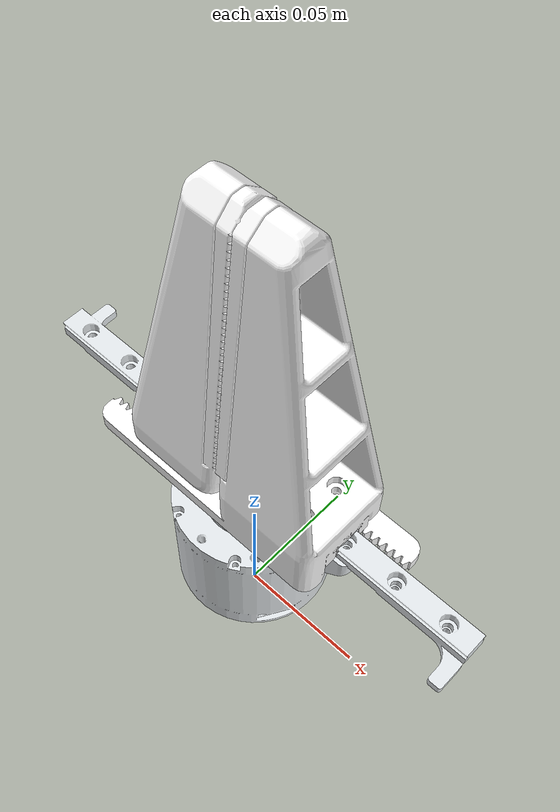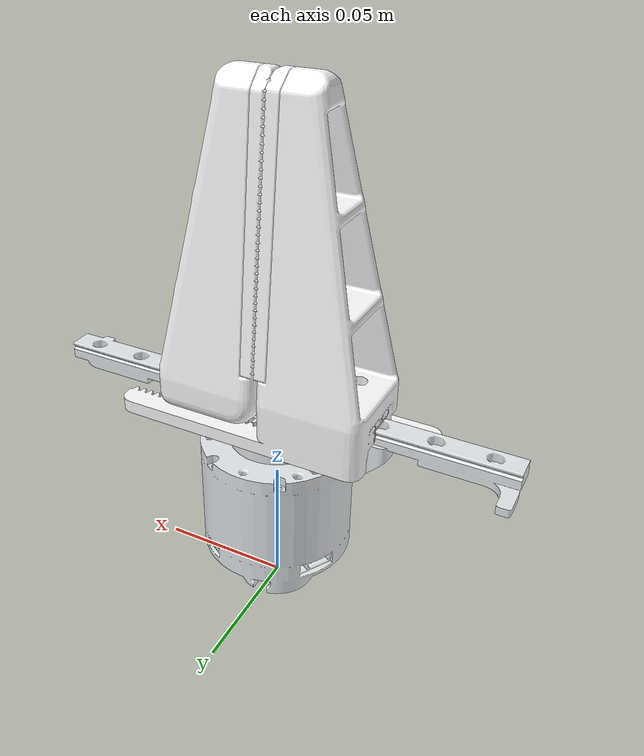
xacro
<?xml version="1.0"?>
<robot name="gripper" xmlns:xacro="http://www.ros.org/wiki/xacro">

    <!-- Arguments -->
    <xacro:arg name="prefix" default="" />
    <xacro:arg name="left" default="False" />

    <xacro:include filename="$(find libertech_ranger_arm_description)/urdf/common/gripper_macro.xacro" />
    <xacro:property name="mesh_visual_path" value="file://$(find libertech_ranger_arm_description)/meshes"/>

    <link name="world"/>

    <xacro:load_gripper prefix="$(arg prefix)" connected_to="world" left="$(arg left)">
        <origin rpy="0.0 0.0 0.0" xyz="0.0 0.0 0.0"/>
    </xacro:load_gripper>

</robot>

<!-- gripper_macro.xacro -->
<robot xmlns:xacro="http://www.ros.org/wiki/xacro">

  <xacro:macro name="load_gripper" params=" prefix:='' connected_to:='' left:=False *origin">
    <xacro:if value="${(left == False)}">
      <xacro:property name="gripper" value="gripper_right"/>
    </xacro:if>
    <xacro:if value="${(left == True)}">
      <xacro:property name="gripper" value="gripper_left"/>
    </xacro:if>
    <xacro:unless value="${not connected_to}">
      <joint name="${prefix}${connected_to}_to_${gripper}_fixed" type="fixed">
        <xacro:insert_block name="origin"/>
        <parent link="${prefix}${connected_to}" />
        <child link="${prefix}${gripper}_base" />
      </joint>
    </xacro:unless>

    <link name="${prefix}${gripper}_base">
      <inertial>
        <origin xyz="-6.29382565053791E-05 -7.99819096174029E-05 0.0512895843801642" rpy="0 0 0" />
        <mass value="0.405634853674762" />
        <inertia ixx="8.78992227335161E-05" ixy="-3.26010634033205E-07" ixz="-4.07901821655985E-08" iyy="0.000292880347487015" iyz="-5.88784289886913E-08" izz="0.000326894821287747" />
      </inertial>
      <visual>
        <origin xyz="0 0 0" rpy="0 0 0" />
        <geometry>
          <mesh filename="${mesh_visual_path}/gripper/gripper_base.STL" />
        </geometry>
        <material name="">
          <color rgba="0.898039215686275 0.917647058823529 0.929411764705882 1" />
        </material>
      </visual>
      <collision>
        <origin xyz="0 0 0" rpy="0 0 0" />
        <geometry>
          <mesh filename="${mesh_visual_path}/gripper/gripper_base.STL" />
        </geometry>
      </collision>
    </link>
    <link name="${prefix}${gripper}_finger1">
      <inertial>
        <origin xyz="-0.000779673814706939 0.0217931787584343 -0.00555705308935257" rpy="0 0 0" />
        <mass value="0.106147400593641" />
        <inertia ixx="7.67970454667326E-05" ixy="-5.87052543036309E-07" ixz="8.02478883724728E-09" iyy="1.94631919011376E-05" iyz="4.3154611554229E-06" izz="7.53005890059645E-05" />
      </inertial>
      <visual>
        <origin xyz="0 0 0" rpy="0 0 0" />
        <geometry>
          <mesh filename="${mesh_visual_path}/gripper/finger1.STL" />
        </geometry>
        <material name="">
          <color rgba="1 1 1 1" />
        </material>
      </visual>
      <collision>
        <origin xyz="0 0 0" rpy="0 0 0" />
        <geometry>
          <mesh filename="${mesh_visual_path}/gripper/finger1.STL" />
        </geometry>
      </collision>
    </link>
    <joint name="${prefix}${gripper}_joint" type="prismatic">
      <origin xyz="-0.02 0 0.0872" rpy="1.5708 0 -1.5708" />
      <parent link="${prefix}${gripper}_base" />
      <child link="${prefix}${gripper}_finger1" />
      <axis xyz="0 0 1" />
      <limit lower="-0.01" upper="0.0435" effort="10" velocity="2" />
    </joint>
    <link name="${prefix}${gripper}_finger2">
      <inertial>
        <origin xyz="-0.000779673814706977 0.0217931787584343 -0.00555705308935256" rpy="0 0 0" />
        <mass value="0.106147400593641" />
        <inertia ixx="7.67970454667326E-05" ixy="-5.87052543036278E-07" ixz="8.02478883723481E-09" iyy="1.94631919011375E-05" iyz="4.31546115542286E-06" izz="7.53005890059645E-05" />
      </inertial>
      <visual>
        <origin xyz="0 0 0" rpy="0 0 0" />
        <geometry>
          <mesh filename="${mesh_visual_path}/gripper/finger2.STL" />
        </geometry>
        <material name="">
          <color rgba="1 1 1 1" />
        </material>
      </visual>
      <collision>
        <origin xyz="0 0 0" rpy="0 0 0" />
        <geometry>
          <mesh filename="${mesh_visual_path}/gripper/finger2.STL" />
        </geometry>
      </collision>
    </link>
    <joint name="${prefix}${gripper}_joint_mimic" type="prismatic">
      <origin xyz="0.02 0 0.0872" rpy="1.5708 0 1.5708" />
      <parent link="${prefix}${gripper}_base" />
      <child link="${prefix}${gripper}_finger2" />
      <axis xyz="0 0 1" />
      <limit lower="-0.01" upper="0.0435" effort="100" velocity="6" />
    </joint>

  </xacro:macro>
</robot>
